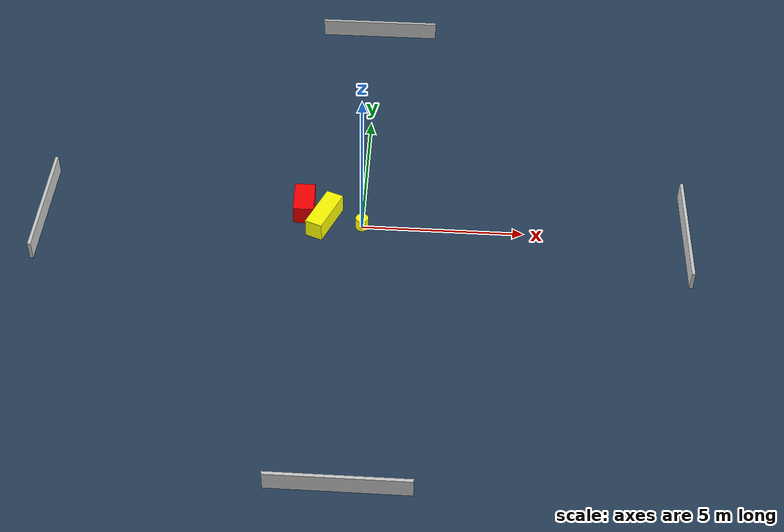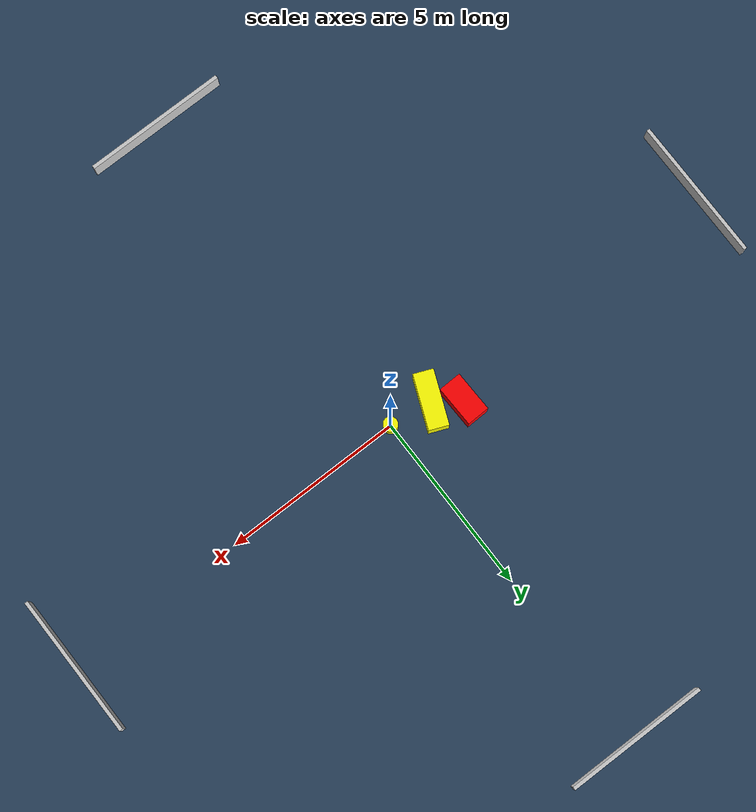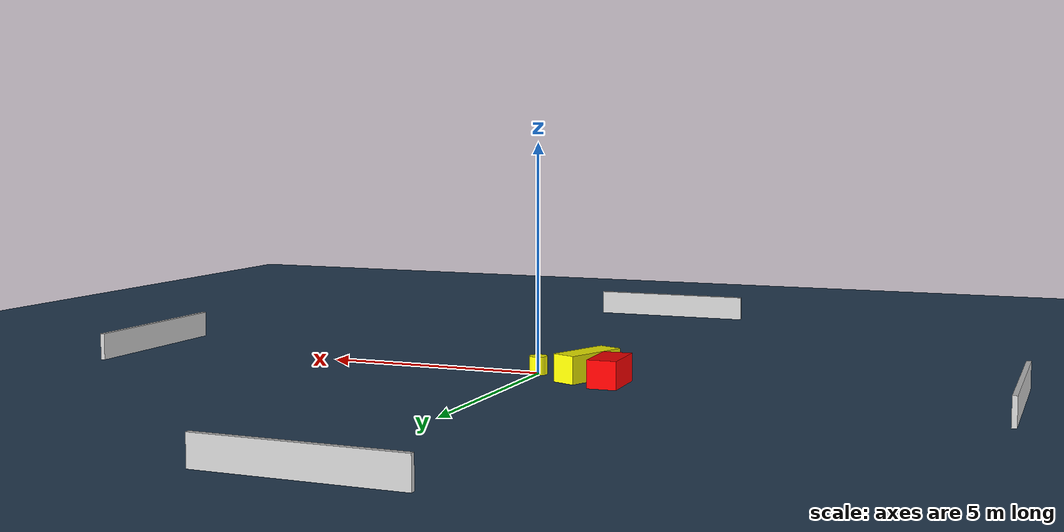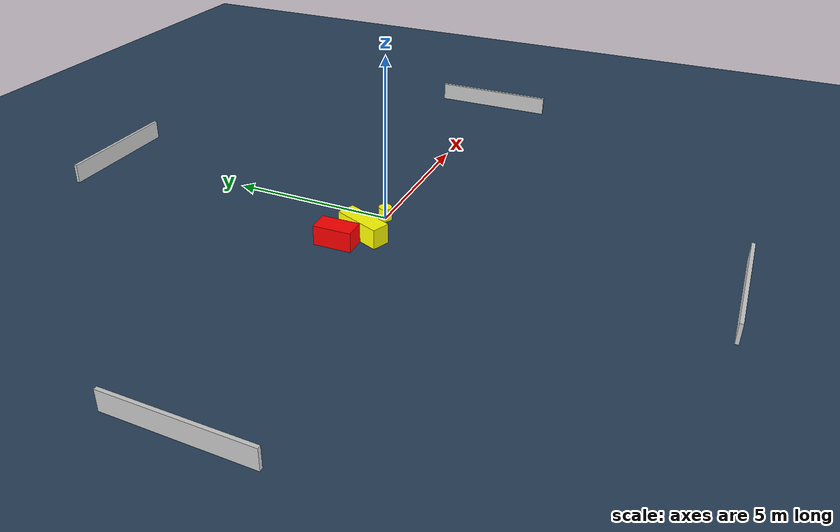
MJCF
<?xml version="1.0" ?>
<mujoco model="generated_environment">
  <option timestep="0.01" integrator="RK4" cone="elliptic"/>
  <default>
    <geom density="1"/>
  </default>
  <asset>
    <texture builtin="gradient" height="3072" name="skybox" rgb1="0.3 0.5 0.7" rgb2="0 0 0" type="skybox" width="512"/>
    <texture builtin="checker" height="300" name="groundplane" rgb1="0.2 0.3 0.4" rgb2="0.1 0.2 0.3" type="2d" width="300"/>
    <material name="groundplane" reflectance="0.2" texrepeat="5 5" texture="groundplane"/>
  </asset>
  <worldbody>
    <light dir="0 0 -1" directional="true" pos="0 0 1.5"/>
    <geom condim="3" friction="0.5 0.005 0.001" material="groundplane" name="floor" pos="0 0 0" size="0 0 0.05" type="plane"/>
    <body name="walls">
      <geom name="wall_1" condim="4" pos="-10.0 0.0 0.3" rgba="0.800000011920929 0.800000011920929 0.800000011920929 1.0" size="0.05 2.0 0.3" type="box"/>
      <geom name="wall_2" condim="4" pos="10.0 0.0 0.3" rgba="0.800000011920929 0.800000011920929 0.800000011920929 1.0" size="0.05 2.0 0.3" type="box"/>
      <geom name="wall_3" condim="4" pos="0.0 -10.0 0.3" rgba="0.800000011920929 0.800000011920929 0.800000011920929 1.0" size="2.0 0.05 0.3" type="box"/>
      <geom name="wall_4" condim="4" pos="0.0 10.0 0.3" rgba="0.800000011920929 0.800000011920929 0.800000011920929 1.0" size="2.0 0.05 0.3" type="box"/>
    </body>
    <body name="robot">
      <joint name="joint_x" type="slide" pos="0 0 0" axis="1 0 0"/>
      <joint name="joint_y" type="slide" pos="0 0 0" axis="0 1 0"/>
      <geom name="robot" type="cylinder" pos="0.0 0.0 0.2" size="0.2 0.2 0.0" mass="5.0" friction="1.0 0.005 0.0001" condim="4" rgba="1.0 1.0 0.0 1.0"/>
    </body>
    <body name="obstacle_1_movable">
      <geom name="obstacle_1_movable" condim="4" pos="-1.1869963304585098 0.14875245002209841 0.3" euler="0 0 67.75953661563415" friction="0.0 0.005 0.001" rgba="1.0 1.0 0.0 1.0" size="0.7560405140838777 0.2773536120017975 0.3" type="box" mass="0.1"/>
      <joint type="free"/>
    </body>
    <body name="obstacle_2_static">
      <geom name="obstacle_2_static" condim="4" pos="-1.8596632525538124 0.6493658931704138 0.3" euler="0 0 91.68785203349191" friction="0.0 0.005 0.001" rgba="1.0 0.0 0.0 1.0" size="0.5745283617701151 0.3186156045716541 0.3" type="box"/>
    </body>
  </worldbody>
  <actuator>
    <motor name="actuator_x" joint="joint_x" gear="1" ctrlrange="-1 1"/>
    <motor name="actuator_y" joint="joint_y" gear="1" ctrlrange="-1 1"/>
  </actuator>
</mujoco>
